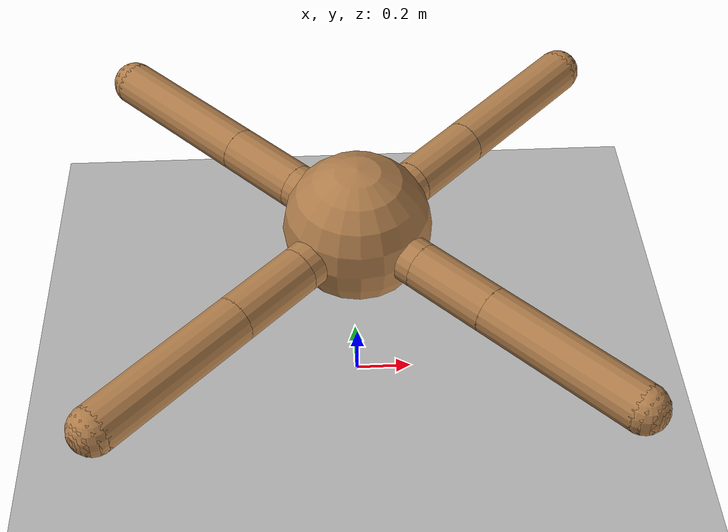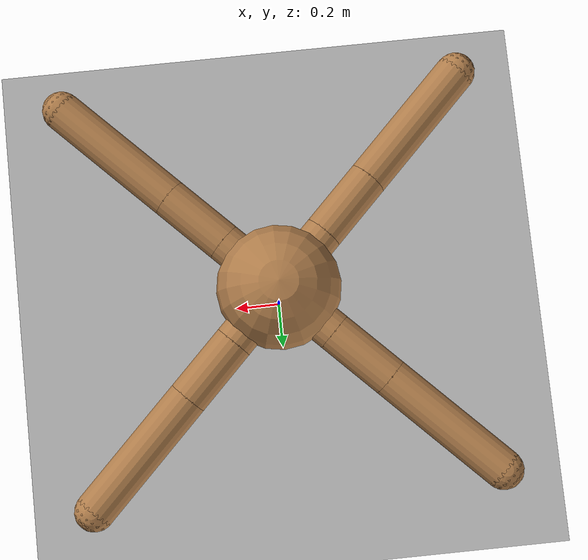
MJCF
<mujoco model="velocity_quadruped">
  <option iterations="10" ls_iterations="20" solver="Newton" integrator="implicitfast">
    <flag eulerdamp="disable"/>
  </option>

  <statistic center="0 0 0.1" extent="10.0" meansize="0.04"/>

  <visual>
    <headlight diffuse="0.6 0.6 0.6" ambient="0.3 0.3 0.3" specular="0 0 0"/>
    <rgba force="1 0 0 1" haze="0.15 0.25 0.35 1" fog="0.75 0.75 0.75 1"/>
    <global azimuth="135" elevation="-25" offwidth="1920" offheight="1080"/>
    <map force="0.005"/>
    <scale forcewidth="0.25" contactwidth="0.4" contactheight="0.15" framelength="5.0" framewidth="0.3"/>
    <quality shadowsize="8192"/>
  </visual>

  <asset>
    <texture type="skybox" builtin="gradient" rgb1="0.71 0.71 0.71" rgb2="0.71 0.71 0.71" width="800" height="800"/>
    <texture name="grey_squares" builtin="checker" height="800" width="800" rgb1="0.71 0.71 0.71" rgb2="0.71 0.71 0.71" type="2d" mark="edge" markrgb="1 1 1"/>
    <material name="floor" reflectance="0.2" texrepeat="1 1" texuniform="true" texture="grey_squares"/>
    <material name="body" rgba=".7 .5 .3 1" specular="0.9" shininess="0.8"/>
  </asset>

  <default>
    <default class="quadruped">
      <geom type="capsule" material="body" density="5" friction="1 0.5 0.5"/>
    </default>
    <default class="visual">
      <geom group="2" density="0" contype="0" conaffinity="0"/>
    </default>
    <joint armature="1" damping="1" limited="true"/>
  </default>

  <worldbody>
    <geom name="floor" pos="0 0 0" size="50 50 0.110" friction="1 0.5 0.5" type="plane" material="floor"/>

    <!-- Quadruped -->
    <body name="quadruped" childclass="quadruped" pos="0 0 0.75">
      <joint name="quadruped_root" type="free" armature="0" damping="0" limited="false" margin="0.01" pos="0 0 0"/>
      <light pos="0 0 2" mode="trackcom"/>
      <camera name="default" mode="trackcom" pos="3.659 -8.426 1.448" xyaxes="0.932 0.363 0.000 -0.075 0.193 0.978"/>
      <site name="imu" quat="1.0 0.0 0.0 0.0" pos="0.0 0.0 0.0" />
      <site name="quadruped" size="0.01" pos="0 0 0"/>
      <geom name="quadruped_torso" pos="0 0 0" size="0.25" type="sphere"/>

      <body name="quadruped_front_left_leg" pos="0 0 0">
        <geom name="quadruped_front_left_aux" fromto="0.0 0.0 0.0 0.2 0.2 0.0" size="0.08" type="capsule"/>
        <body name="quadruped_front_left_aux" pos="0.2 0.2 0">
          <joint name="quadruped_front_left_hip" axis="0 0 1" pos="0.0 0.0 0.0" range="-30 30" type="hinge"/>
          <geom name="quadruped_front_left_leg" fromto="0.0 0.0 0.0 0.2 0.2 0.0" size="0.08" type="capsule"/>
          <body name="quadruped_front_left_knee" pos="0.2 0.2 0">
            <joint name="quadruped_front_left_ankle" axis="-1 1 0" pos="0.0 0.0 0.0" range="30 70" type="hinge"/>
            <geom name="quadruped_front_left_ankle" fromto="0.0 0.0 0.0 0.4 0.4 0.0" size="0.08" type="capsule"/>
            <geom name="quadruped_front_left_foot" pos="0.4 0.4 0" size="0.08" type="sphere" mass="0"/>
            <site name="quadruped_front_left_foot" pos="0.435 0.435 0" size="0.03" type="sphere"/>
          </body>
        </body>
      </body>

      <body name="quadruped_front_right_leg" pos="0 0 0">
        <geom name="quadruped_front_right_aux" fromto="0.0 0.0 0.0 -0.2 0.2 0.0" size="0.08" type="capsule"/>
        <body name="quadruped_front_right_aux" pos="-0.2 0.2 0">
          <joint name="quadruped_front_right_hip" axis="0 0 1" pos="0.0 0.0 0.0" range="-30 30" type="hinge"/>
          <geom name="quadruped_front_right_leg" fromto="0.0 0.0 0.0 -0.2 0.2 0.0" size="0.08" type="capsule"/>
          <body name="quadruped_front_right_knee" pos="-0.2 0.2 0">
            <joint name="quadruped_front_right_ankle" axis="1 1 0" pos="0.0 0.0 0.0" range="-70 -30" type="hinge"/>
            <geom name="quadruped_front_right_ankle" fromto="0.0 0.0 0.0 -0.4 0.4 0.0" size="0.08" type="capsule"/>
            <geom name="quadruped_front_right_foot" pos="-0.4 0.4 0" size="0.08" type="sphere" mass="0"/>
            <site name="quadruped_front_right_foot" pos="-0.435 0.435 0" size="0.03" type="sphere"/>
          </body>
        </body>
      </body>

      <body name="quadruped_back_left_leg" pos="0 0 0">
        <geom name="quadruped_back_left_aux" fromto="0.0 0.0 0.0 -0.2 -0.2 0.0" size="0.08" type="capsule"/>
        <body name="quadruped_back_left_aux" pos="-0.2 -0.2 0">
          <joint name="quadruped_back_left_hip" axis="0 0 1" pos="0.0 0.0 0.0" range="-30 30" type="hinge"/>
          <geom name="quadruped_back_left_leg" fromto="0.0 0.0 0.0 -0.2 -0.2 0.0" size="0.08" type="capsule"/>
          <body name="quadruped_back_left_knee" pos="-0.2 -0.2 0">
            <joint name="quadruped_back_left_ankle" axis="-1 1 0" pos="0.0 0.0 0.0" range="-70 -30" type="hinge"/>
            <geom name="quadruped_back_left_ankle" fromto="0.0 0.0 0.0 -0.4 -0.4 0.0" size="0.08" type="capsule"/>
            <geom name="quadruped_back_left_foot" pos="-0.4 -0.4 0" size="0.08" type="sphere" mass="0"/>
            <site name="quadruped_back_left_foot" pos="-0.435 -0.435 0" size="0.03" type="sphere"/>
          </body>
        </body>
      </body>

      <body name="quadruped_back_right_leg" pos="0 0 0">
        <geom name="quadruped_back_right_aux" fromto="0.0 0.0 0.0 0.2 -0.2 0.0" size="0.08" type="capsule"/>
        <body name="quadruped_back_right_aux" pos="0.2 -0.2 0">
          <joint name="quadruped_back_right_hip" axis="0 0 1" pos="0.0 0.0 0.0" range="-30 30" type="hinge"/>
          <geom name="quadruped_back_right_leg" fromto="0.0 0.0 0.0 0.2 -0.2 0.0" size="0.08" type="capsule"/>
          <body name="quadruped_back_right_knee" pos="0.2 -0.2 0">
            <joint name="quadruped_back_right_ankle" axis="1 1 0" pos="0.0 0.0 0.0" range="30 70" type="hinge"/>
            <geom name="quadruped_back_right_ankle" fromto="0.0 0.0 0.0 0.4 -0.4 0.0" size="0.08" type="capsule"/>
            <geom name="quadruped_back_right_foot" pos="0.4 -0.4 0" size="0.08" type="sphere" mass="0"/>
            <site name="quadruped_back_right_foot" pos="0.435 -0.435 0" size="0.03" type="sphere"/>
          </body>
        </body>
      </body>
    </body>
  </worldbody>

  <sensor>
    <gyro name="gyro" site="imu" noise="0.01" />
    <accelerometer name="accelerometer" site="imu" noise="0.01" />
    <velocimeter name="local_linvel" site="imu" />

    <frameangvel name="global_angvel" objtype="site" objname="imu" />
    <framelinvel name="global_linvel" objtype="site" objname="imu" />
    <framezaxis name="gravity" objtype="site" objname="imu"/>

    <framepos name="front_left_foot_pos" objtype="site" objname="quadruped_front_left_foot"/>
    <framepos name="front_right_foot_pos" objtype="site" objname="quadruped_front_right_foot"/>
    <framepos name="back_left_foot_pos" objtype="site" objname="quadruped_back_left_foot"/>
    <framepos name="back_right_foot_pos" objtype="site" objname="quadruped_back_right_foot"/>

    <framelinvel name="front_left_foot_linvel" objtype="site" objname="quadruped_front_left_foot"/>
    <framelinvel name="front_right_foot_linvel" objtype="site" objname="quadruped_front_right_foot"/>
    <framelinvel name="back_left_foot_linvel" objtype="site" objname="quadruped_back_left_foot"/>
    <framelinvel name="back_right_foot_linvel" objtype="site" objname="quadruped_back_right_foot"/>

    <contact name="front_left_foot_floor_contact" geom1="quadruped_front_left_foot" geom2="floor" reduce="mindist" num="1" data="found"/>
    <contact name="front_right_foot_floor_contact" geom1="quadruped_front_right_foot" geom2="floor" reduce="mindist" num="1" data="found"/>
    <contact name="back_left_foot_floor_contact" geom1="quadruped_back_left_foot" geom2="floor" reduce="mindist" num="1" data="found"/>
    <contact name="back_right_foot_floor_contact" geom1="quadruped_back_right_foot" geom2="floor" reduce="mindist" num="1" data="found"/>

    <subtreeangmom name="root_angmom" body="quadruped"/>
  </sensor>

  <!-- Quadruped has 8 Actuators -->
  <actuator>
    <motor ctrllimited="true" ctrlrange="-1.0 1.0" joint="quadruped_front_left_hip" gear="150"/>
    <motor ctrllimited="true" ctrlrange="-1.0 1.0" joint="quadruped_front_left_ankle" gear="150"/>
    <motor ctrllimited="true" ctrlrange="-1.0 1.0" joint="quadruped_front_right_hip" gear="150"/>
    <motor ctrllimited="true" ctrlrange="-1.0 1.0" joint="quadruped_front_right_ankle" gear="150"/>
    <motor ctrllimited="true" ctrlrange="-1.0 1.0" joint="quadruped_back_left_hip" gear="150"/>
    <motor ctrllimited="true" ctrlrange="-1.0 1.0" joint="quadruped_back_left_ankle" gear="150"/>
    <motor ctrllimited="true" ctrlrange="-1.0 1.0" joint="quadruped_back_right_hip" gear="150"/>
    <motor ctrllimited="true" ctrlrange="-1.0 1.0" joint="quadruped_back_right_ankle" gear="150"/>
  </actuator>

  <keyframe>
    <key name="home" qpos="0 0.0 0.55 1.0 0.0 0.0 0.0 0.0 1.0 0.0 -1.0 0.0 -1.0 0.0 1.0"/>
  </keyframe>
</mujoco>
